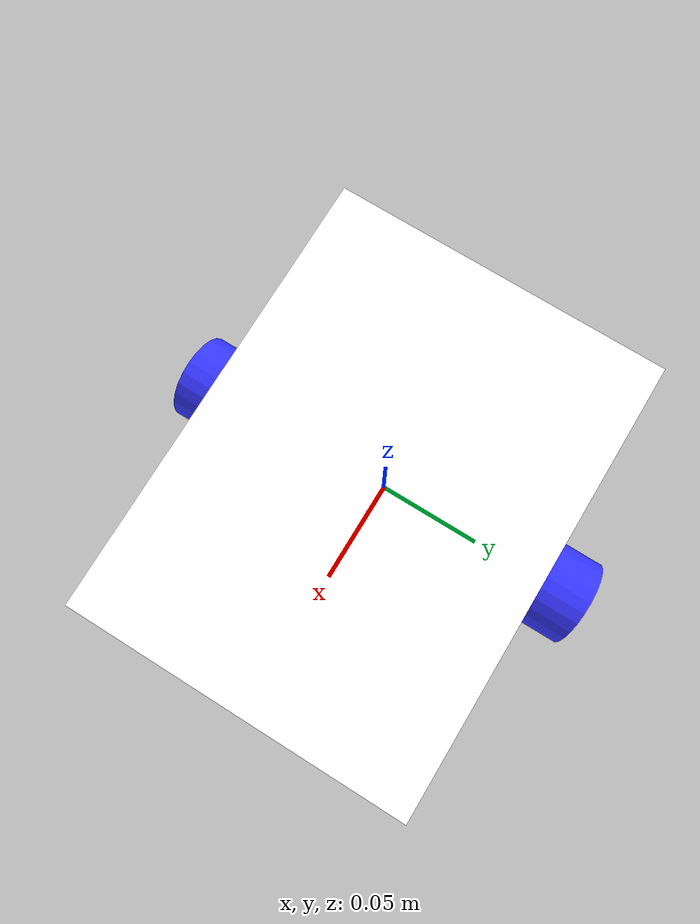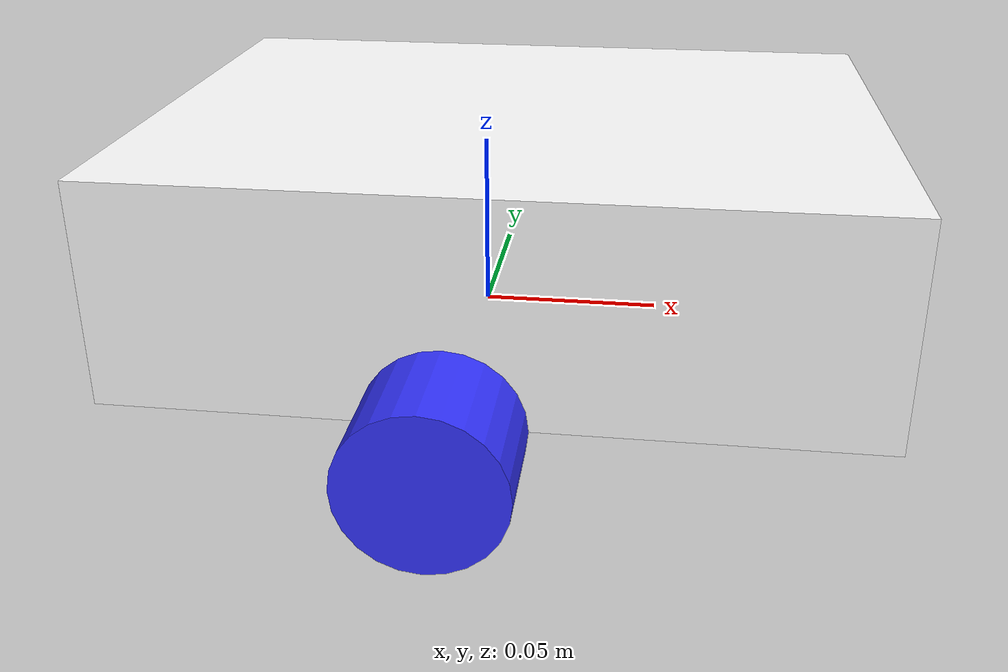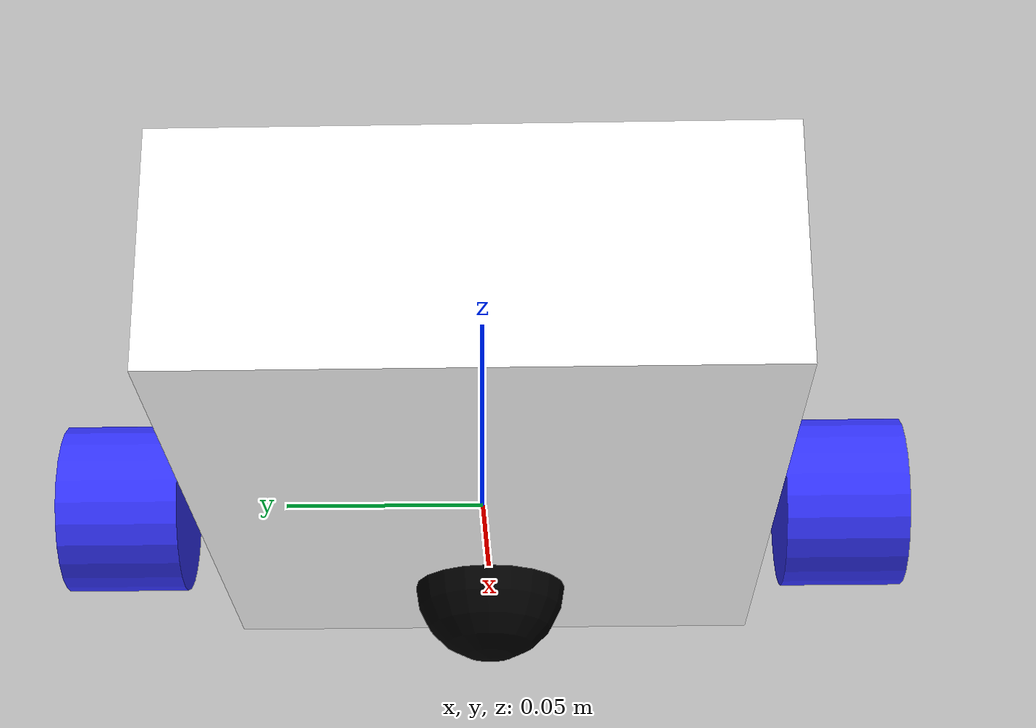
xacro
<?xml version="1.0"?>
<robot xmlns:xacro="http://www.ros.org/wiki/xacro">

    <xacro:include filename="inertial_macros.xacro"/>

    <material name="white">
        <color rgba="1 1 1 1"/>
    </material>

    <material name="orange">
        <color rgba="1 0.3 0.1 1"/>
    </material>

    <material name="blue">
        <color rgba="0.2 0.2 1 1"/>
    </material>

    <material name="black">
        <color rgba="0 0 0 1"/>
    </material>

    <material name="red">
        <color rgba="1 0 0 1"/>
    </material>

    <!-- BASE LINK -->

    <link name="base_link">

    </link>

    <!-- BASE FOOTPRINT LINK -->

    <joint name="base_footprint_joint" type="fixed">
        <parent link="base_link"/>
        <child link="base_footprint"/>
        <origin xyz="0.0 0.0 0.0" rpy="0.0 0.0 0.0"/>
    </joint>

    <link name="base_footprint">

    </link>

    <!-- CHASSIS LINK -->

    <joint name="chassis_joint" type="fixed">
        <parent link="base_link"/>
        <child link="chassis"/>
        <origin xyz="-0.1 0.0 0.0"/>
    </joint>

    <link name="chassis">
        <visual>
            <origin xyz="0.11 0.0 0.03"/>
            <geometry>
                <box size="0.2 0.15 0.06"/>
            </geometry>
            <material name="white"/>
        </visual>
        <collision>
            <origin xyz="0.11 0.0 0.03"/>
            <geometry>
                <box size="0.2 0.15 0.06"/>
            </geometry>
        </collision>
        <xacro:inertial_box mass="0.5" x="0.2" y="0.15" z="0.06">
            <origin xyz="0.11 0.0 0.03" rpy="0 0 0"/>
        </xacro:inertial_box>
    </link>

    <gazebo reference="chassis">
        <material>Gazebo/White</material>
    </gazebo>

    <!-- LEFT WHEEL LINK -->

    <joint name="left_wheel_joint" type="continuous">
        <parent link="base_link"/>
        <child link="left_wheel"/>
        <origin xyz="0.0 0.09 0.0" rpy="-1.5708 0 0"/> <!-- Equivalent to pi/2 in radians -->
        <axis xyz="0.0 0.0 1"/>
    </joint>

    <link name="left_wheel">
        <visual>
            <geometry>
                <cylinder radius="0.021" length="0.03"/>
            </geometry>
            <material name="blue"/>
        </visual>
        <collision>
            <geometry>
                <sphere radius="0.021"/>
            </geometry>
        </collision>
        <xacro:inertial_cylinder mass="0.1" length="0.03" radius="0.021">
            <origin xyz="0.0 0.09 0.0" rpy="0.0 0.0 0.0"/>
        </xacro:inertial_cylinder>
    </link>

    <gazebo reference="left_wheel">
        <material>Gazebo/Blue</material>
    </gazebo>

    <!-- RIGHT WHEEL LINK -->

    <joint name="right_wheel_joint" type="continuous">
        <parent link="base_link"/>
        <child link="right_wheel"/> <!-- Correct child link name -->
        <origin xyz="0.0 -0.09 0.0" rpy="1.5708 0 0"/> <!-- Equivalent to -pi/2 in radians -->
        <axis xyz="0.0 0.0 -1"/>
    </joint>

    <link name="right_wheel">
        <visual>
            <geometry>
                <cylinder radius="0.021" length="0.03"/>
            </geometry>
            <material name="blue"/>
        </visual>
        <collision>
            <geometry>
                <sphere radius="0.021"/>
            </geometry>
        </collision>
        <xacro:inertial_cylinder mass="0.1" length="0.03" radius="0.021">
            <origin xyz="0.0 0.0 0.0" rpy="0.0 0.0 0.0"/>
        </xacro:inertial_cylinder>
    </link>

    <gazebo reference="right_wheel">
        <material>Gazebo/Blue</material>
    </gazebo>

    <!-- CASTER WHEEL LINK -->

    <joint name="caster_wheel_joint" type="fixed">
        <parent link="chassis"/>
        <child link="caster_wheel"/>
        <origin xyz="0.17 0.0 0.0"/>
    </joint>

    <link name="caster_wheel">
        <visual>
            <geometry>
                <sphere radius="0.021"/>
            </geometry>
            <material name="black"/>
        </visual>
        <collision>
            <geometry>
                <sphere radius="0.021"/>
            </geometry>
        </collision>
        <xacro:inertial_sphere mass="0.1" radius="0.021">
            <origin xyz="0.17 0.0 0.0" rpy="0.0 0.0 0.0"/>
        </xacro:inertial_sphere>
    </link>

    <gazebo reference="caster_wheel">
        <material>Gazebo/Black</material>
        <mu1 value="0.001"/>
        <mu2 value="0.001"/>
    </gazebo>

</robot>
